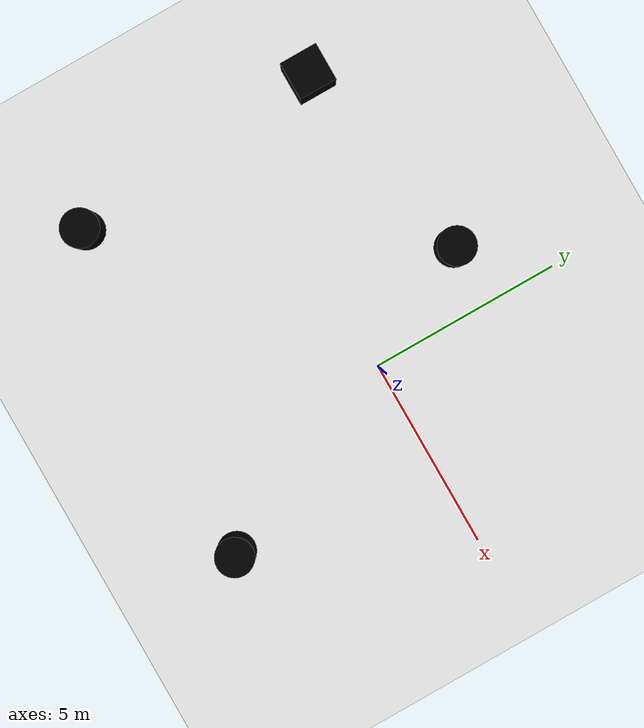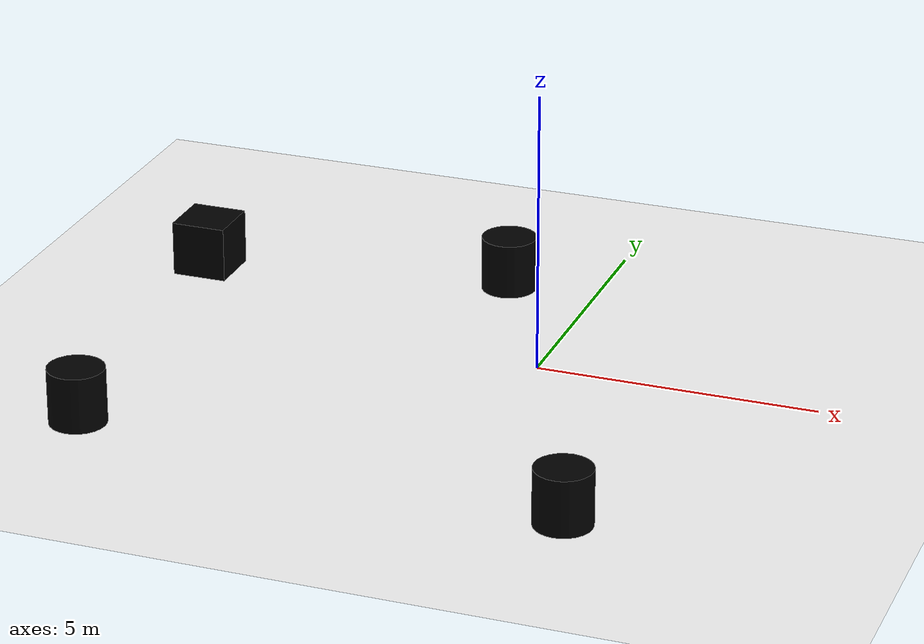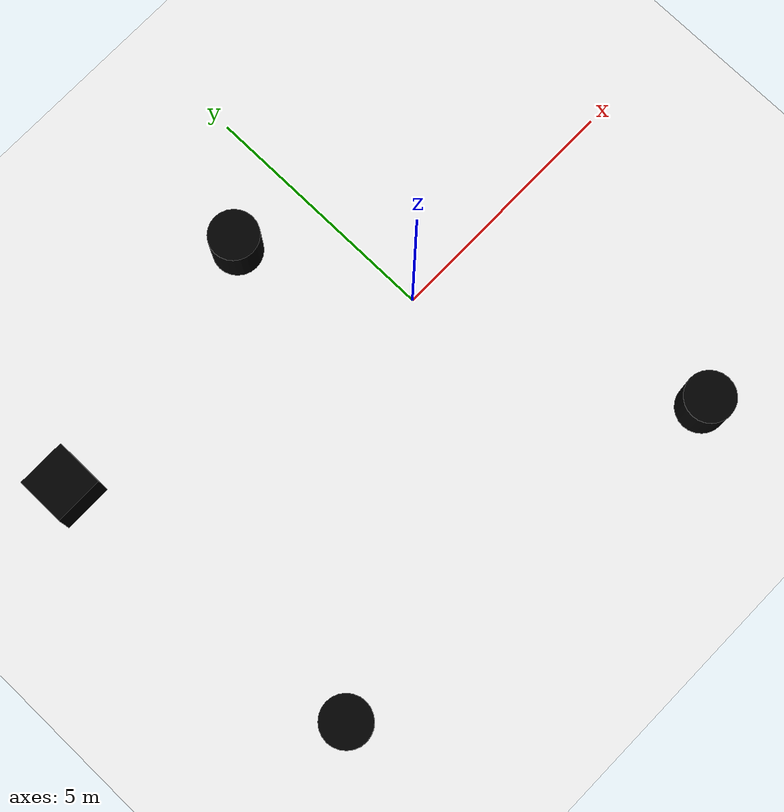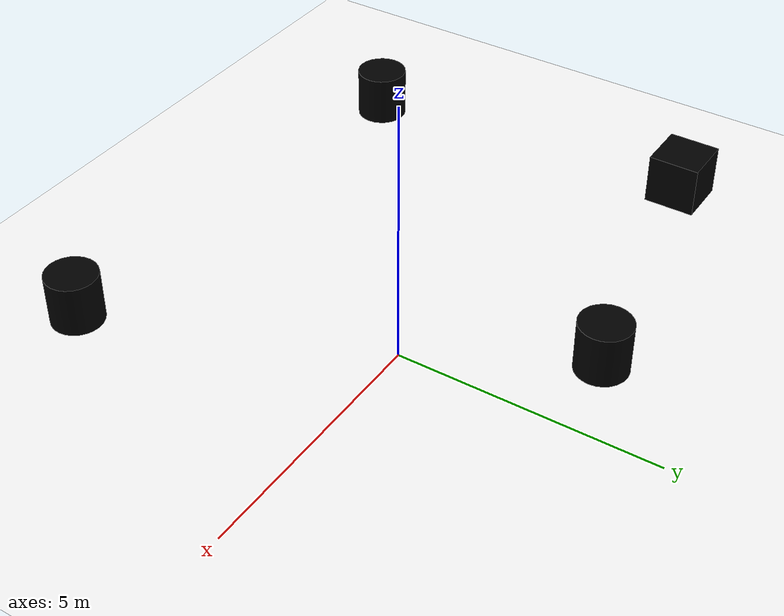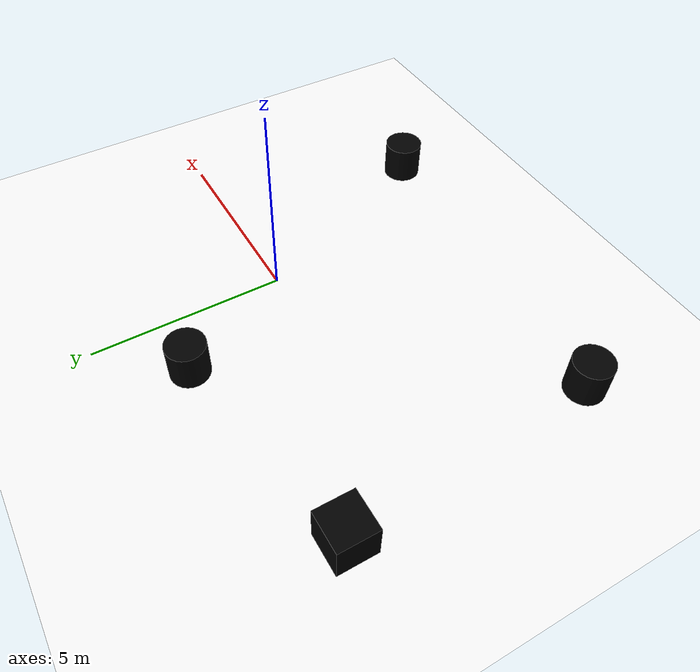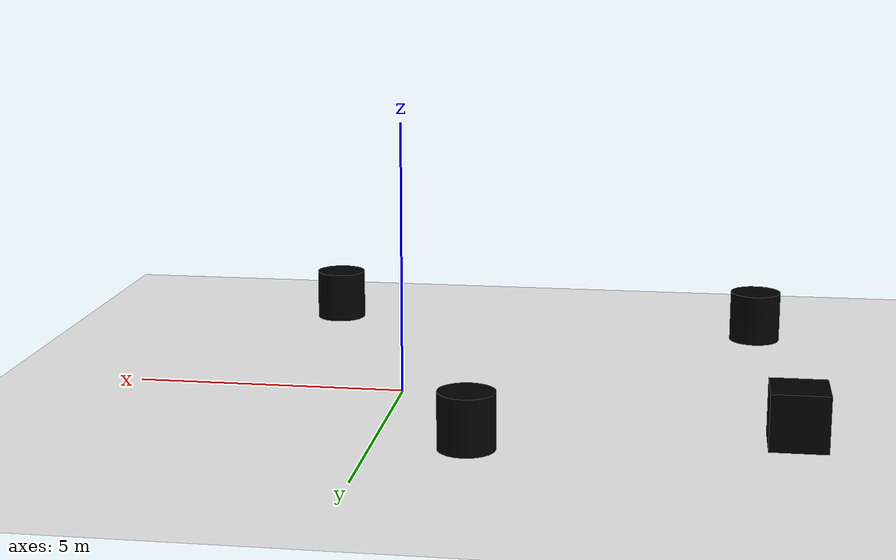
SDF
<sdf version='1.9'>
  <world name='default'>
    <gravity>0 0 -9.8</gravity>
    <magnetic_field>6e-06 2.3e-05 -4.2e-05</magnetic_field>
    <atmosphere type='adiabatic'/>
    <physics type='ode'>
      <max_step_size>0.001</max_step_size>
      <real_time_factor>1</real_time_factor>
      <real_time_update_rate>1000</real_time_update_rate>
    </physics>
    <scene>
      <ambient>0.4 0.4 0.4 1</ambient>
      <background>0.7 0.7 0.7 1</background>
      <shadows>true</shadows>
    </scene>

    <model name='ground_plane'>
      <static>true</static>
      <link name='link'>
        <collision name='collision'>
          <geometry>
            <plane>
              <normal>0 0 1</normal>
              <size>100 100</size>
            </plane>
          </geometry>
          <surface>
            <friction>
              <ode/>
            </friction>
            <bounce/>
            <contact/>
          </surface>
        </collision>
        <visual name='visual'>
          <geometry>
            <plane>
              <normal>0 0 1</normal>
              <size>100 100</size>
            </plane>
          </geometry>
          <material>
            <ambient>1 1 1 1</ambient>
            <diffuse>1 1 1 1</diffuse>
            <specular>1 1 1 1</specular>
          </material>
        </visual>
        <pose>0 0 0 0 -0 0</pose>
        <inertial>
          <pose>0 0 0 0 -0 0</pose>
          <mass>1</mass>
          <inertia>
            <ixx>1</ixx>
            <ixy>0</ixy>
            <ixz>0</ixz>
            <iyy>1</iyy>
            <iyz>0</iyz>
            <izz>1</izz>
          </inertia>
        </inertial>
        <enable_wind>false</enable_wind>
      </link>
      <pose>0 0 0 0 -0 0</pose>
      <self_collide>false</self_collide>
    </model>

    <model name='cylinder'>
      <pose>-1.6114 3.09169 0.5 0 -0 0</pose>
      <link name='cylinder_link'>
        <inertial>
          <inertia>
            <ixx>0.14580000000000001</ixx>
            <ixy>0</ixy>
            <ixz>0</ixz>
            <iyy>0.14580000000000001</iyy>
            <iyz>0</iyz>
            <izz>0.125</izz>
          </inertia>
          <mass>1</mass>
          <pose>0 0 0 0 -0 0</pose>
        </inertial>
        <collision name='cylinder_collision'>
          <geometry>
            <cylinder>
              <radius>0.5</radius>
              <length>1</length>
            </cylinder>
          </geometry>
          <surface>
            <friction>
              <ode/>
            </friction>
            <bounce/>
            <contact/>
          </surface>
        </collision>
        <visual name='cylinder_visual'>
          <geometry>
            <cylinder>
              <radius>0.5</radius>
              <length>1</length>
            </cylinder>
          </geometry>
          <material>
            <ambient>0 0 0 1</ambient>
            <diffuse>0 0 0 1</diffuse>
            <specular>0 0 0 1</specular>
            <emissive>0 0 0 1</emissive>
          </material>
        </visual>
        <pose>0 0 0 0 -0 0</pose>
        <enable_wind>false</enable_wind>
      </link>
      <static>false</static>
      <self_collide>false</self_collide>
    </model>

    <model name='cylinder_0'>
      <pose>2.26407 -5.333 0.5 0 -0 0</pose>
      <link name='cylinder_link'>
        <inertial>
          <inertia>
            <ixx>0.14580000000000001</ixx>
            <ixy>0</ixy>
            <ixz>0</ixz>
            <iyy>0.14580000000000001</iyy>
            <iyz>0</iyz>
            <izz>0.125</izz>
          </inertia>
          <mass>1</mass>
          <pose>0 0 0 0 -0 0</pose>
        </inertial>
        <collision name='cylinder_collision'>
          <geometry>
            <cylinder>
              <radius>0.5</radius>
              <length>1</length>
            </cylinder>
          </geometry>
          <surface>
            <friction>
              <ode/>
            </friction>
            <bounce/>
            <contact/>
          </surface>
        </collision>
        <visual name='cylinder_visual'>
          <geometry>
            <cylinder>
              <radius>0.5</radius>
              <length>1</length>
            </cylinder>
          </geometry>
          <material>
            <ambient>0 0 0 1</ambient>
            <diffuse>0 0 0 1</diffuse>
            <specular>0 0 0 1</specular>
            <emissive>0 0 0 1</emissive>
          </material>
        </visual>
        <pose>0 0 0 0 -0 0</pose>
        <enable_wind>false</enable_wind>
      </link>
      <static>false</static>
      <self_collide>false</self_collide>
    </model>

    <model name='cylinder_1'>
      <pose>-6.52737 -4.63422 0.5 0 -0 0</pose>
      <link name='cylinder_link'>
        <inertial>
          <inertia>
            <ixx>0.14580000000000001</ixx>
            <ixy>0</ixy>
            <ixz>0</ixz>
            <iyy>0.14580000000000001</iyy>
            <iyz>0</iyz>
            <izz>0.125</izz>
          </inertia>
          <mass>1</mass>
          <pose>0 0 0 0 -0 0</pose>
        </inertial>
        <collision name='cylinder_collision'>
          <geometry>
            <cylinder>
              <radius>0.5</radius>
              <length>1</length>
            </cylinder>
          </geometry>
          <surface>
            <friction>
              <ode/>
            </friction>
            <bounce/>
            <contact/>
          </surface>
        </collision>
        <visual name='cylinder_visual'>
          <geometry>
            <cylinder>
              <radius>0.5</radius>
              <length>1</length>
            </cylinder>
          </geometry>
          <material>
            <ambient>0 0 0 1</ambient>
            <diffuse>0 0 0 1</diffuse>
            <specular>0 0 0 1</specular>
            <emissive>0 0 0 1</emissive>
          </material>
        </visual>
        <pose>0 0 0 0 -0 0</pose>
        <enable_wind>false</enable_wind>
      </link>
      <static>false</static>
      <self_collide>false</self_collide>
    </model>

    <model name='box'>
      <pose>-7.07574 2.05572 0.5 0 -0 0</pose>
      <link name='box_link'>
        <inertial>
          <inertia>
            <ixx>0.16666</ixx>
            <ixy>0</ixy>
            <ixz>0</ixz>
            <iyy>0.16666</iyy>
            <iyz>0</iyz>
            <izz>0.16666</izz>
          </inertia>
          <mass>1</mass>
          <pose>0 0 0 0 -0 0</pose>
        </inertial>
        <collision name='box_collision'>
          <geometry>
            <box>
              <size>1 1 1</size>
            </box>
          </geometry>
          <surface>
            <friction>
              <ode/>
            </friction>
            <bounce/>
            <contact/>
          </surface>
        </collision>
        <visual name='box_visual'>
          <geometry>
            <box>
              <size>1 1 1</size>
            </box>
          </geometry>
          <material>
            <ambient>0 0 0 1</ambient>
            <diffuse>0 0 0 1</diffuse>
            <specular>0 0 0 1</specular>
            <emissive>0 0 0 1</emissive>
          </material>
        </visual>
        <pose>0 0 0 0 -0 0</pose>
        <enable_wind>false</enable_wind>
      </link>
      <static>false</static>
      <self_collide>false</self_collide>
    </model>
  </world>
</sdf>
